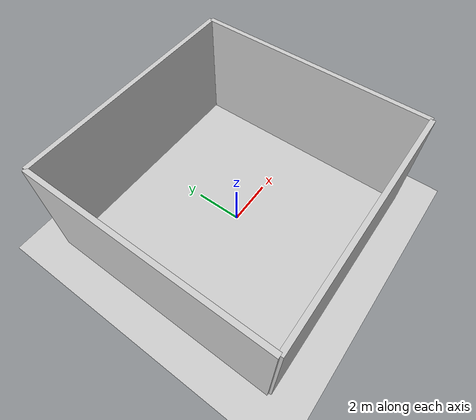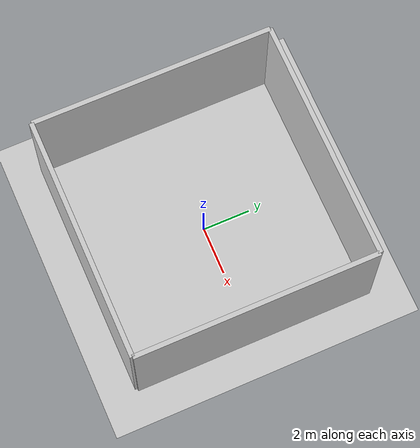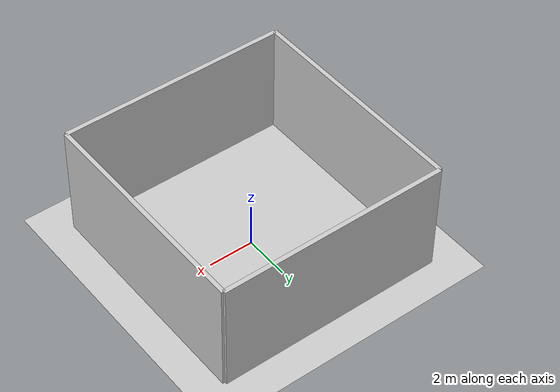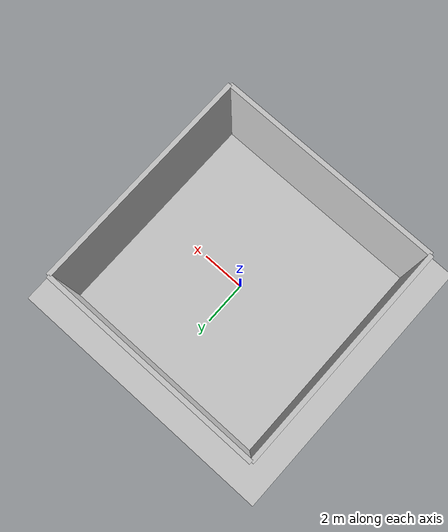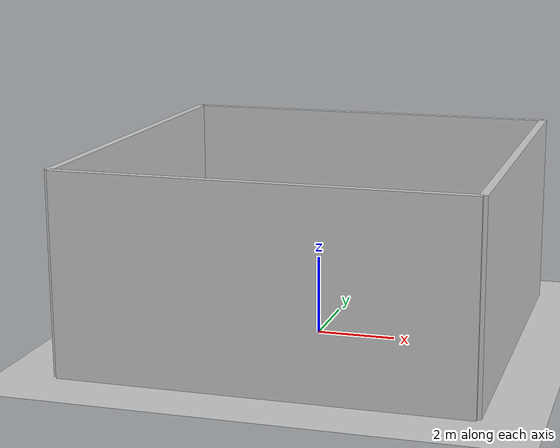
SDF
<sdf version="1.7">
 <world name="simple_world">
  <include><uri>model://ground_plane</uri></include>
  <include><uri>model://sun</uri></include>
  <physics name="1ms" type="ode">
   <max_step_size>0.001</max_step_size>
   <real_time_factor>1.0</real_time_factor>
   <real_time_update_rate>1000.0</real_time_update_rate>
   <gravity>0 0 -9.8</gravity>
  </physics>
  <model name="room_walls">
   <static>true</static>
   <link name="wall_north">
    <pose>0 5 2.5 0 0 0</pose>
    <visual name="visual">
     <geometry><box><size>10 0.2 5</size></box></geometry>
     <material><ambient>0.8 0.8 0.8 1</ambient><diffuse>0.8 0.8 0.8 1</diffuse></material>
    </visual>
    <collision name="collision"><geometry><box><size>10 0.2 5</size></box></geometry></collision>
   </link>
   <link name="wall_south">
    <pose>0 -5 2.5 0 0 0</pose>
    <visual name="visual">
     <geometry><box><size>10 0.2 5</size></box></geometry>
     <material><ambient>0.8 0.8 0.8 1</ambient><diffuse>0.8 0.8 0.8 1</diffuse></material>
    </visual>
    <collision name="collision"><geometry><box><size>10 0.2 5</size></box></geometry></collision>
   </link>
   <link name="wall_east">
    <pose>5 0 2.5 0 0 0</pose>
    <visual name="visual">
     <geometry><box><size>0.2 10 5</size></box></geometry>
     <material><ambient>0.8 0.8 0.8 1</ambient><diffuse>0.8 0.8 0.8 1</diffuse></material>
    </visual>
    <collision name="collision"><geometry><box><size>0.2 10 5</size></box></geometry></collision>
   </link>
   <link name="wall_west">
    <pose>-5 0 2.5 0 0 0</pose>
    <visual name="visual">
     <geometry><box><size>0.2 10 5</size></box></geometry>
     <material><ambient>0.8 0.8 0.8 1</ambient><diffuse>0.8 0.8 0.8 1</diffuse></material>
    </visual>
    <collision name="collision"><geometry><box><size>0.2 10 5</size></box></geometry></collision>
   </link>
  </model>
 </world>
</sdf>
